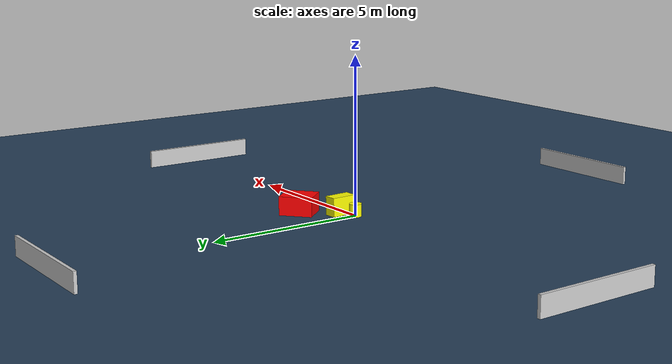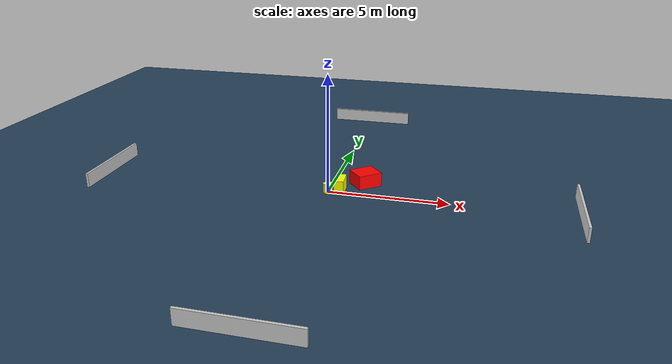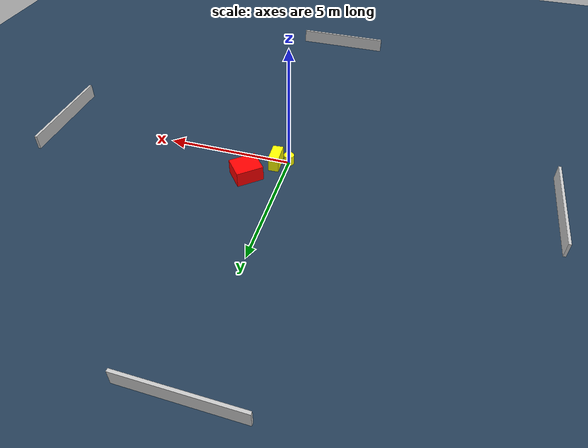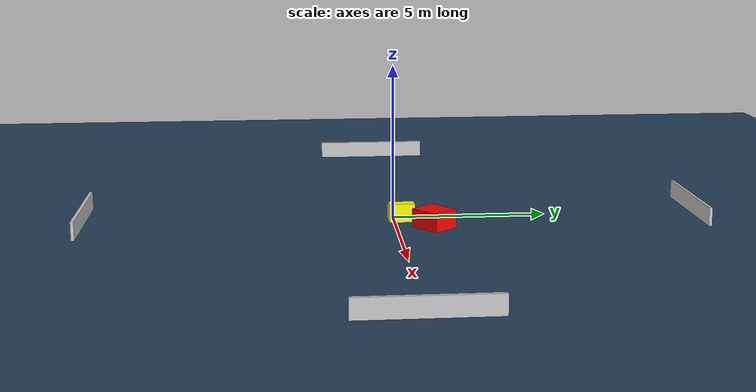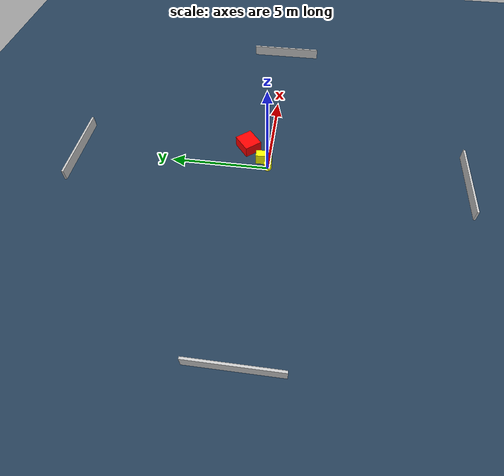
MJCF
<?xml version="1.0" ?>
<mujoco model="generated_environment">
  <option timestep="0.01" integrator="RK4" cone="elliptic"/>
  <default>
    <geom density="1"/>
  </default>
  <asset>
    <texture builtin="gradient" height="3072" name="skybox" rgb1="0.3 0.5 0.7" rgb2="0 0 0" type="skybox" width="512"/>
    <texture builtin="checker" height="300" name="groundplane" rgb1="0.2 0.3 0.4" rgb2="0.1 0.2 0.3" type="2d" width="300"/>
    <material name="groundplane" reflectance="0.2" texrepeat="5 5" texture="groundplane"/>
  </asset>
  <worldbody>
    <light dir="0 0 -1" directional="true" pos="0 0 1.5"/>
    <geom condim="3" friction="0.5 0.005 0.001" material="groundplane" name="floor" pos="0 0 0" size="0 0 0.05" type="plane"/>
    <body name="walls">
      <geom name="wall_1" condim="4" pos="-10.0 0.0 0.3" rgba="0.800000011920929 0.800000011920929 0.800000011920929 1.0" size="0.05 2.0 0.3" type="box"/>
      <geom name="wall_2" condim="4" pos="10.0 0.0 0.3" rgba="0.800000011920929 0.800000011920929 0.800000011920929 1.0" size="0.05 2.0 0.3" type="box"/>
      <geom name="wall_3" condim="4" pos="0.0 -10.0 0.3" rgba="0.800000011920929 0.800000011920929 0.800000011920929 1.0" size="2.0 0.05 0.3" type="box"/>
      <geom name="wall_4" condim="4" pos="0.0 10.0 0.3" rgba="0.800000011920929 0.800000011920929 0.800000011920929 1.0" size="2.0 0.05 0.3" type="box"/>
    </body>
    <body name="robot">
      <joint name="joint_x" type="slide" pos="0 0 0" axis="1 0 0"/>
      <joint name="joint_y" type="slide" pos="0 0 0" axis="0 1 0"/>
      <geom name="robot" type="cylinder" pos="0.0 0.0 0.2" size="0.2 0.2 0.0" mass="5.0" friction="1.0 0.005 0.0001" condim="4" rgba="1.0 1.0 0.0 1.0"/>
    </body>
    <body name="obstacle_1_movable">
      <geom name="obstacle_1_movable" condim="4" pos="0.46416500942270456 0.24048083551050495 0.3" euler="0 0 2.7657977199067396" friction="0.0 0.005 0.001" rgba="1.0 1.0 0.0 1.0" size="0.2020840700944699 0.41232107634885784 0.3" type="box" mass="0.1"/>
      <joint type="free"/>
    </body>
    <body name="obstacle_2_static">
      <geom name="obstacle_2_static" condim="4" pos="1.3459109972716792 1.1912930094611216 0.3" euler="0 0 220.2629374808446" friction="0.0 0.005 0.001" rgba="1.0 0.0 0.0 1.0" size="0.5240823110621798 0.4553965847369089 0.3" type="box"/>
    </body>
  </worldbody>
  <actuator>
    <motor name="actuator_x" joint="joint_x" gear="1" ctrlrange="-1 1"/>
    <motor name="actuator_y" joint="joint_y" gear="1" ctrlrange="-1 1"/>
  </actuator>
</mujoco>
